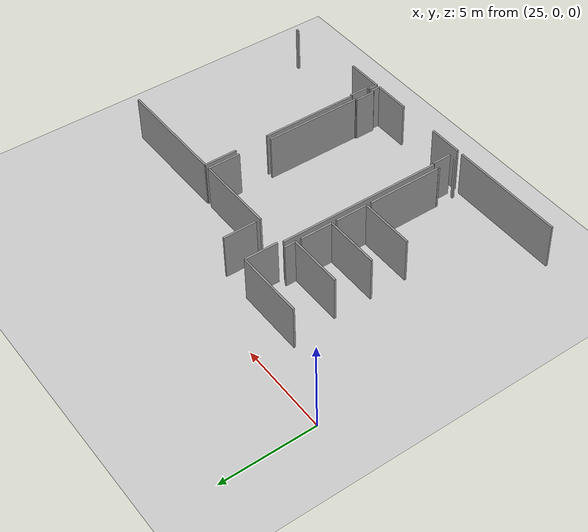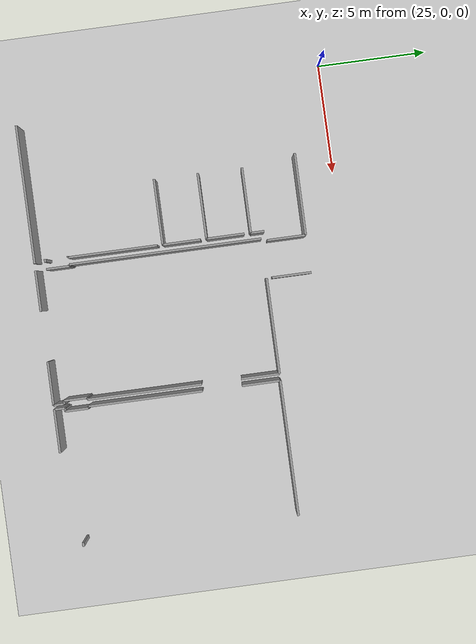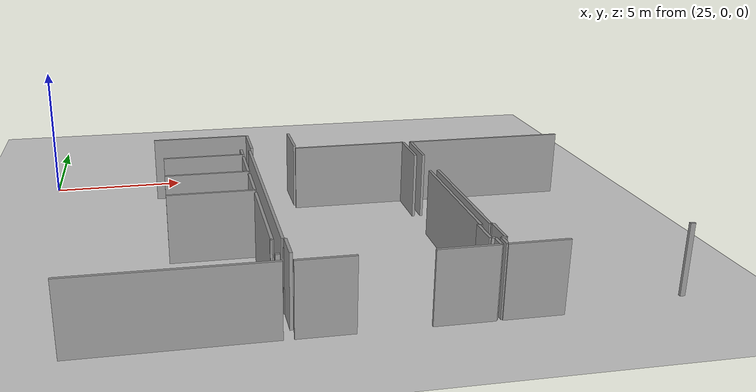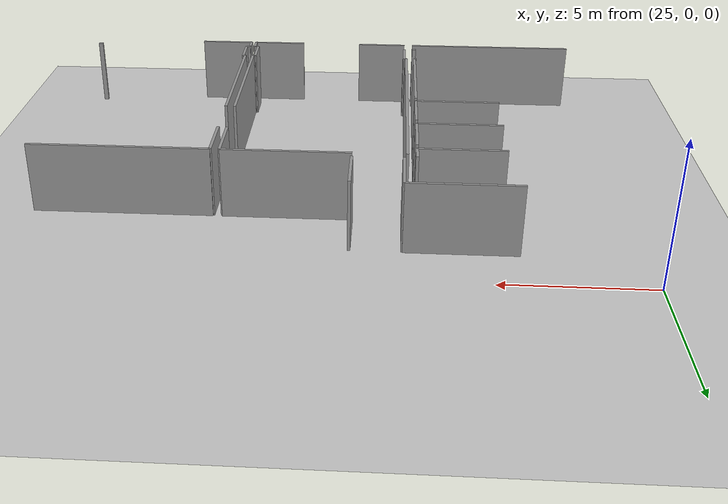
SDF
<sdf version="1.6">
 <world name="default">
  <model name="ground_plane">
   <static>1</static>
   <link name="link">
    <collision name="collision">
     <geometry><plane><normal>0 0 1</normal><size>100 100</size></plane></geometry>
     <surface><friction><ode><mu>100</mu><mu2>50</mu2></ode></friction></surface>
    </collision>
    <visual name="visual">
     <cast_shadows>0</cast_shadows>
     <geometry><plane><normal>0 0 1</normal><size>100 100</size></plane></geometry>
     <material>
      <script><uri>file://media/materials/scripts/gazebo.material</uri><name>Gazebo/Grey</name></script>
     </material>
    </visual>
   </link>
  </model>
  <model name="0510040942_A-40">
   <static>1</static>
   <link name="Wall_236">
    <collision name="Wall_236_Collision">
     <geometry><box><size>0.619790146796 0.1 2.5</size></box></geometry>
     <pose>0.309895073398 0 1.25 0 0 0</pose>
    </collision>
    <visual name="Wall_236_Visual">
     <pose>0.309895073398 0 1.25 0 0 0</pose>
     <geometry><box><size>0.619790146796 0.1 2.5</size></box></geometry>
     <material>
      <script><uri>file://media/materials/scripts/gazebo.material</uri><name>Gazebo/Grey</name></script>
      <ambient>1 1 1 1</ambient>
     </material>
    </visual>
    <pose>91.0551023256 -16.1712574698 0 0 0 -1.57079632679</pose>
   </link>
   <link name="Wall_237">
    <collision name="Wall_237_Collision">
     <geometry><box><size>2.9950391413 0.1 2.5</size></box></geometry>
     <pose>1.49751957065 0 1.25 0 0 0</pose>
    </collision>
    <visual name="Wall_237_Visual">
     <pose>1.49751957065 0 1.25 0 0 0</pose>
     <geometry><box><size>2.9950391413 0.1 2.5</size></box></geometry>
     <material>
      <script><uri>file://media/materials/scripts/gazebo.material</uri><name>Gazebo/Grey</name></script>
      <ambient>1 1 1 1</ambient>
     </material>
    </visual>
    <pose>91.0551023256 -16.7910476166 0 0 0 3.14159265359</pose>
   </link>
   <link name="Wall_241">
    <collision name="Wall_241_Collision">
     <geometry><box><size>1.73541241103 0.1 2.5</size></box></geometry>
     <pose>0.867706205514 0 1.25 0 0 0</pose>
    </collision>
    <visual name="Wall_241_Visual">
     <pose>0.867706205514 0 1.25 0 0 0</pose>
     <geometry><box><size>1.73541241103 0.1 2.5</size></box></geometry>
     <material>
      <script><uri>file://media/materials/scripts/gazebo.material</uri><name>Gazebo/Grey</name></script>
      <ambient>1 1 1 1</ambient>
     </material>
    </visual>
    <pose>91.0481241357 -17.0796909296 0 0 0 -1.57079632679</pose>
   </link>
   <link name="Wall_242">
    <collision name="Wall_242_Collision">
     <geometry><box><size>2.99960668384 0.1 2.5</size></box></geometry>
     <pose>1.49980334192 0 1.25 0 0 0</pose>
    </collision>
    <visual name="Wall_242_Visual">
     <pose>1.49980334192 0 1.25 0 0 0</pose>
     <geometry><box><size>2.99960668384 0.1 2.5</size></box></geometry>
     <material>
      <script><uri>file://media/materials/scripts/gazebo.material</uri><name>Gazebo/Grey</name></script>
      <ambient>1 1 1 1</ambient>
     </material>
    </visual>
    <pose>91.0481241357 -18.8151033406 0 0 0 3.14159265359</pose>
   </link>
   <link name="Wall_246">
    <collision name="Wall_246_Collision">
     <geometry><box><size>1.7266579545 0.1 2.5</size></box></geometry>
     <pose>0.863328977251 0 1.25 0 0 0</pose>
    </collision>
    <visual name="Wall_246_Visual">
     <pose>0.863328977251 0 1.25 0 0 0</pose>
     <geometry><box><size>1.7266579545 0.1 2.5</size></box></geometry>
     <material>
      <script><uri>file://media/materials/scripts/gazebo.material</uri><name>Gazebo/Grey</name></script>
      <ambient>1 1 1 1</ambient>
     </material>
    </visual>
    <pose>91.0495197737 -19.0894096451 0 0 0 -1.57079632679</pose>
   </link>
   <link name="Wall_247">
    <collision name="Wall_247_Collision">
     <geometry><box><size>3.00442797874 0.1 2.5</size></box></geometry>
     <pose>1.50221398937 0 1.25 0 0 0</pose>
    </collision>
    <visual name="Wall_247_Visual">
     <pose>1.50221398937 0 1.25 0 0 0</pose>
     <geometry><box><size>3.00442797874 0.1 2.5</size></box></geometry>
     <material>
      <script><uri>file://media/materials/scripts/gazebo.material</uri><name>Gazebo/Grey</name></script>
      <ambient>1 1 1 1</ambient>
     </material>
    </visual>
    <pose>91.0495197737 -20.8160675996 0 0 0 3.14159265359</pose>
   </link>
   <link name="Wall_254">
    <collision name="Wall_254_Collision">
     <geometry><box><size>4.0682847609 0.1 2.5</size></box></geometry>
     <pose>2.03414238045 0 1.25 0 0 0</pose>
    </collision>
    <visual name="Wall_254_Visual">
     <pose>2.03414238045 0 1.25 0 0 0</pose>
     <geometry><box><size>4.0682847609 0.1 2.5</size></box></geometry>
     <material>
      <script><uri>file://media/materials/scripts/gazebo.material</uri><name>Gazebo/Grey</name></script>
      <ambient>1 1 1 1</ambient>
     </material>
    </visual>
    <pose>91.0463478691 -21.0754025147 0 0 0 -1.57079632679</pose>
   </link>
   <link name="Wall_255">
    <collision name="Wall_255_Collision">
     <geometry><box><size>0.0615349480442 0.1 2.5</size></box></geometry>
     <pose>0.0307674740221 0 1.25 0 0 0</pose>
    </collision>
    <visual name="Wall_255_Visual">
     <pose>0.0307674740221 0 1.25 0 0 0</pose>
     <geometry><box><size>0.0615349480442 0.1 2.5</size></box></geometry>
     <material>
      <script><uri>file://media/materials/scripts/gazebo.material</uri><name>Gazebo/Grey</name></script>
      <ambient>1 1 1 1</ambient>
     </material>
    </visual>
    <pose>91.0463478691 -25.1436872756 0 0 0 3.14159265359</pose>
   </link>
   <link name="Wall_257">
    <collision name="Wall_257_Collision">
     <geometry><box><size>0.1422281995 0.1 2.5</size></box></geometry>
     <pose>0.0711140997501 0 1.25 0 0 0</pose>
    </collision>
    <visual name="Wall_257_Visual">
     <pose>0.0711140997501 0 1.25 0 0 0</pose>
     <geometry><box><size>0.1422281995 0.1 2.5</size></box></geometry>
     <material>
      <script><uri>file://media/materials/scripts/gazebo.material</uri><name>Gazebo/Grey</name></script>
      <ambient>1 1 1 1</ambient>
     </material>
    </visual>
    <pose>90.9848129211 -26.198662725 0 0 0 0.0</pose>
   </link>
   <link name="Wall_258">
    <collision name="Wall_258_Collision">
     <geometry><box><size>6.31729195478 0.1 2.5</size></box></geometry>
     <pose>3.15864597739 0 1.25 0 0 0</pose>
    </collision>
    <visual name="Wall_258_Visual">
     <pose>3.15864597739 0 1.25 0 0 0</pose>
     <geometry><box><size>6.31729195478 0.1 2.5</size></box></geometry>
     <material>
      <script><uri>file://media/materials/scripts/gazebo.material</uri><name>Gazebo/Grey</name></script>
      <ambient>1 1 1 1</ambient>
     </material>
    </visual>
    <pose>91.1270411206 -26.6847253765 0 0 0 3.14159265359</pose>
   </link>
   <link name="Wall_261">
    <collision name="Wall_261_Collision">
     <geometry><box><size>8.77792861946 0.1 2.5</size></box></geometry>
     <pose>4.38896430973 0 1.25 0 0 0</pose>
    </collision>
    <visual name="Wall_261_Visual">
     <pose>4.38896430973 0 1.25 0 0 0</pose>
     <geometry><box><size>8.77792861946 0.1 2.5</size></box></geometry>
     <material>
      <script><uri>file://media/materials/scripts/gazebo.material</uri><name>Gazebo/Grey</name></script>
      <ambient>1 1 1 1</ambient>
     </material>
    </visual>
    <pose>91.3696283797 -25.1247827245 0 0 0 1.57079632679</pose>
   </link>
   <link name="Wall_262">
    <collision name="Wall_262_Collision">
     <geometry><box><size>4.37519824403 0.1 2.5</size></box></geometry>
     <pose>2.18759912202 0 1.25 0 0 0</pose>
    </collision>
    <visual name="Wall_262_Visual">
     <pose>2.18759912202 0 1.25 0 0 0</pose>
     <geometry><box><size>4.37519824403 0.1 2.5</size></box></geometry>
     <material>
      <script><uri>file://media/materials/scripts/gazebo.material</uri><name>Gazebo/Grey</name></script>
      <ambient>1 1 1 1</ambient>
     </material>
    </visual>
    <pose>93.1762183285 -16.3468541051 0 0 0 0.0</pose>
   </link>
   <link name="Wall_263">
    <collision name="Wall_263_Collision">
     <geometry><box><size>1.75076442899 0.1 2.5</size></box></geometry>
     <pose>0.875382214497 0 1.25 0 0 0</pose>
    </collision>
    <visual name="Wall_263_Visual">
     <pose>0.875382214497 0 1.25 0 0 0</pose>
     <geometry><box><size>1.75076442899 0.1 2.5</size></box></geometry>
     <material>
      <script><uri>file://media/materials/scripts/gazebo.material</uri><name>Gazebo/Grey</name></script>
      <ambient>1 1 1 1</ambient>
     </material>
    </visual>
    <pose>97.5514165726 -16.3468541051 0 0 0 -1.57079632679</pose>
   </link>
   <link name="Wall_264">
    <collision name="Wall_264_Collision">
     <geometry><box><size>5.21042414707 0.1 2.5</size></box></geometry>
     <pose>2.60521207354 0 1.25 0 0 0</pose>
    </collision>
    <visual name="Wall_264_Visual">
     <pose>2.60521207354 0 1.25 0 0 0</pose>
     <geometry><box><size>5.21042414707 0.1 2.5</size></box></geometry>
     <material>
      <script><uri>file://media/materials/scripts/gazebo.material</uri><name>Gazebo/Grey</name></script>
      <ambient>1 1 1 1</ambient>
     </material>
    </visual>
    <pose>97.5514165726 -19.9143585775 0 0 0 -1.57079632679</pose>
   </link>
   <link name="Wall_265">
    <collision name="Wall_265_Collision">
     <geometry><box><size>0.088305822348 0.1 2.5</size></box></geometry>
     <pose>0.044152911174 0 1.25 0 0 0</pose>
    </collision>
    <visual name="Wall_265_Visual">
     <pose>0.044152911174 0 1.25 0 0 0</pose>
     <geometry><box><size>0.088305822348 0.1 2.5</size></box></geometry>
     <material>
      <script><uri>file://media/materials/scripts/gazebo.material</uri><name>Gazebo/Grey</name></script>
      <ambient>1 1 1 1</ambient>
     </material>
    </visual>
    <pose>97.5514165726 -25.1247827245 0 0 0 3.14159265359</pose>
   </link>
   <link name="Wall_266">
    <collision name="Wall_266_Collision">
     <geometry><box><size>1.07235748633 0.1 2.5</size></box></geometry>
     <pose>0.536178743165 0 1.25 0 0 0</pose>
    </collision>
    <visual name="Wall_266_Visual">
     <pose>0.536178743165 0 1.25 0 0 0</pose>
     <geometry><box><size>1.07235748633 0.1 2.5</size></box></geometry>
     <material>
      <script><uri>file://media/materials/scripts/gazebo.material</uri><name>Gazebo/Grey</name></script>
      <ambient>1 1 1 1</ambient>
     </material>
    </visual>
    <pose>97.4631107502 -25.1247827245 0 0 0 -1.57079632679</pose>
   </link>
   <link name="Wall_267">
    <collision name="Wall_267_Collision">
     <geometry><box><size>0.145146351675 0.1 2.5</size></box></geometry>
     <pose>0.0725731758377 0 1.25 0 0 0</pose>
    </collision>
    <visual name="Wall_267_Visual">
     <pose>0.0725731758377 0 1.25 0 0 0</pose>
     <geometry><box><size>0.145146351675 0.1 2.5</size></box></geometry>
     <material>
      <script><uri>file://media/materials/scripts/gazebo.material</uri><name>Gazebo/Grey</name></script>
      <ambient>1 1 1 1</ambient>
     </material>
    </visual>
    <pose>97.4631107502 -26.1971402109 0 0 0 0.0</pose>
   </link>
   <link name="Wall_268">
    <collision name="Wall_268_Collision">
     <geometry><box><size>0.498369641067 0.1 2.5</size></box></geometry>
     <pose>0.249184820534 0 1.25 0 0 0</pose>
    </collision>
    <visual name="Wall_268_Visual">
     <pose>0.249184820534 0 1.25 0 0 0</pose>
     <geometry><box><size>0.498369641067 0.1 2.5</size></box></geometry>
     <material>
      <script><uri>file://media/materials/scripts/gazebo.material</uri><name>Gazebo/Grey</name></script>
      <ambient>1 1 1 1</ambient>
     </material>
    </visual>
    <pose>97.6082571019 -26.1971402109 0 0 0 -1.57079632679</pose>
   </link>
   <link name="Wall_269">
    <collision name="Wall_269_Collision">
     <geometry><box><size>1.99335168809 0.1 2.5</size></box></geometry>
     <pose>0.996675844044 0 1.25 0 0 0</pose>
    </collision>
    <visual name="Wall_269_Visual">
     <pose>0.996675844044 0 1.25 0 0 0</pose>
     <geometry><box><size>1.99335168809 0.1 2.5</size></box></geometry>
     <material>
      <script><uri>file://media/materials/scripts/gazebo.material</uri><name>Gazebo/Grey</name></script>
      <ambient>1 1 1 1</ambient>
     </material>
    </visual>
    <pose>97.6082571019 -26.6955098519 0 0 0 3.14159265359</pose>
   </link>
   <link name="Wall_270">
    <collision name="Wall_270_Collision">
     <geometry><box><size>1.86000482129 0.1 2.5</size></box></geometry>
     <pose>0.930002410647 0 1.25 0 0 0</pose>
    </collision>
    <visual name="Wall_270_Visual">
     <pose>0.930002410647 0 1.25 0 0 0</pose>
     <geometry><box><size>1.86000482129 0.1 2.5</size></box></geometry>
     <material>
      <script><uri>file://media/materials/scripts/gazebo.material</uri><name>Gazebo/Grey</name></script>
      <ambient>1 1 1 1</ambient>
     </material>
    </visual>
    <pose>93.3061395384 -26.6955098519 0 0 0 3.14159265359</pose>
   </link>
   <link name="Wall_271">
    <collision name="Wall_271_Collision">
     <geometry><box><size>1.06372990598 0.1 2.5</size></box></geometry>
     <pose>0.531864952992 0 1.25 0 0 0</pose>
    </collision>
    <visual name="Wall_271_Visual">
     <pose>0.531864952992 0 1.25 0 0 0</pose>
     <geometry><box><size>1.06372990598 0.1 2.5</size></box></geometry>
     <material>
      <script><uri>file://media/materials/scripts/gazebo.material</uri><name>Gazebo/Grey</name></script>
      <ambient>1 1 1 1</ambient>
     </material>
    </visual>
    <pose>91.4461347171 -26.1929532969 0 0 0 1.57079632679</pose>
   </link>
   <link name="Wall_272">
    <collision name="Wall_272_Collision">
     <geometry><box><size>0.0766351041626 0.1 2.5</size></box></geometry>
     <pose>0.0383175520813 0 1.25 0 0 0</pose>
    </collision>
    <visual name="Wall_272_Visual">
     <pose>0.0383175520813 0 1.25 0 0 0</pose>
     <geometry><box><size>0.0766351041626 0.1 2.5</size></box></geometry>
     <material>
      <script><uri>file://media/materials/scripts/gazebo.material</uri><name>Gazebo/Grey</name></script>
      <ambient>1 1 1 1</ambient>
     </material>
    </visual>
    <pose>91.4461347171 -25.1292233909 0 0 0 3.08361458689</pose>
   </link>
   <link name="Wall_273">
    <collision name="Wall_273_Collision">
     <geometry><box><size>5.21638732761 0.1 2.5</size></box></geometry>
     <pose>2.6081936638 0 1.25 0 0 0</pose>
    </collision>
    <visual name="Wall_273_Visual">
     <pose>2.6081936638 0 1.25 0 0 0</pose>
     <geometry><box><size>5.21638732761 0.1 2.5</size></box></geometry>
     <material>
      <script><uri>file://media/materials/scripts/gazebo.material</uri><name>Gazebo/Grey</name></script>
      <ambient>1 1 1 1</ambient>
     </material>
    </visual>
    <pose>97.8621363411 -25.12858901 0 0 0 1.57079632679</pose>
   </link>
   <link name="Wall_274">
    <collision name="Wall_274_Collision">
     <geometry><box><size>1.75799637134 0.1 2.5</size></box></geometry>
     <pose>0.878998185671 0 1.25 0 0 0</pose>
    </collision>
    <visual name="Wall_274_Visual">
     <pose>0.878998185671 0 1.25 0 0 0</pose>
     <geometry><box><size>1.75799637134 0.1 2.5</size></box></geometry>
     <material>
      <script><uri>file://media/materials/scripts/gazebo.material</uri><name>Gazebo/Grey</name></script>
      <ambient>1 1 1 1</ambient>
     </material>
    </visual>
    <pose>97.8621363411 -18.1103061522 0 0 0 1.57079632679</pose>
   </link>
   <link name="Wall_275">
    <collision name="Wall_275_Collision">
     <geometry><box><size>6.18851263052 0.1 2.5</size></box></geometry>
     <pose>3.09425631526 0 1.25 0 0 0</pose>
    </collision>
    <visual name="Wall_275_Visual">
     <pose>3.09425631526 0 1.25 0 0 0</pose>
     <geometry><box><size>6.18851263052 0.1 2.5</size></box></geometry>
     <material>
      <script><uri>file://media/materials/scripts/gazebo.material</uri><name>Gazebo/Grey</name></script>
      <ambient>1 1 1 1</ambient>
     </material>
    </visual>
    <pose>97.8621363411 -16.3523097809 0 0 0 0.0</pose>
   </link>
   <link name="Wall_280">
    <collision name="Wall_280_Collision">
     <geometry><box><size>0.17115596889 0.1 2.5</size></box></geometry>
     <pose>0.085577984445 0 1.25 0 0 0</pose>
    </collision>
    <visual name="Wall_280_Visual">
     <pose>0.085577984445 0 1.25 0 0 0</pose>
     <geometry><box><size>0.17115596889 0.1 2.5</size></box></geometry>
     <material>
      <script><uri>file://media/materials/scripts/gazebo.material</uri><name>Gazebo/Grey</name></script>
      <ambient>1 1 1 1</ambient>
     </material>
    </visual>
    <pose>103.955111207 -26.1926995445 0 0 0 0.0</pose>
   </link>
   <link name="Wall_283">
    <collision name="Wall_283_Collision">
     <geometry><box><size>1.98967227882 0.1 2.5</size></box></geometry>
     <pose>0.994836139412 0 1.25 0 0 0</pose>
    </collision>
    <visual name="Wall_283_Visual">
     <pose>0.994836139412 0 1.25 0 0 0</pose>
     <geometry><box><size>1.98967227882 0.1 2.5</size></box></geometry>
     <material>
      <script><uri>file://media/materials/scripts/gazebo.material</uri><name>Gazebo/Grey</name></script>
      <ambient>1 1 1 1</ambient>
     </material>
    </visual>
    <pose>99.791034929 -26.6863747669 0 0 0 3.14159265359</pose>
   </link>
   <link name="Wall_284">
    <collision name="Wall_284_Collision">
     <geometry><box><size>0.487077660911 0.1 2.5</size></box></geometry>
     <pose>0.243538830455 0 1.25 0 0 0</pose>
    </collision>
    <visual name="Wall_284_Visual">
     <pose>0.243538830455 0 1.25 0 0 0</pose>
     <geometry><box><size>0.487077660911 0.1 2.5</size></box></geometry>
     <material>
      <script><uri>file://media/materials/scripts/gazebo.material</uri><name>Gazebo/Grey</name></script>
      <ambient>1 1 1 1</ambient>
     </material>
    </visual>
    <pose>97.8013626502 -26.6863747669 0 0 0 1.57079632679</pose>
   </link>
   <link name="Wall_285">
    <collision name="Wall_285_Collision">
     <geometry><box><size>0.141213190048 0.1 2.5</size></box></geometry>
     <pose>0.0706065950239 0 1.25 0 0 0</pose>
    </collision>
    <visual name="Wall_285_Visual">
     <pose>0.0706065950239 0 1.25 0 0 0</pose>
     <geometry><box><size>0.141213190048 0.1 2.5</size></box></geometry>
     <material>
      <script><uri>file://media/materials/scripts/gazebo.material</uri><name>Gazebo/Grey</name></script>
      <ambient>1 1 1 1</ambient>
     </material>
    </visual>
    <pose>97.8013626502 -26.199297106 0 0 0 0.0</pose>
   </link>
   <link name="Wall_286">
    <collision name="Wall_286_Collision">
     <geometry><box><size>1.06829744852 0.1 2.5</size></box></geometry>
     <pose>0.53414872426 0 1.25 0 0 0</pose>
    </collision>
    <visual name="Wall_286_Visual">
     <pose>0.53414872426 0 1.25 0 0 0</pose>
     <geometry><box><size>1.06829744852 0.1 2.5</size></box></geometry>
     <material>
      <script><uri>file://media/materials/scripts/gazebo.material</uri><name>Gazebo/Grey</name></script>
      <ambient>1 1 1 1</ambient>
     </material>
    </visual>
    <pose>97.9425758402 -26.199297106 0 0 0 1.57079632679</pose>
   </link>
   <link name="Wall_287">
    <collision name="Wall_287_Collision">
     <geometry><box><size>0.0804756126751 0.1 2.5</size></box></geometry>
     <pose>0.0402378063375 0 1.25 0 0 0</pose>
    </collision>
    <visual name="Wall_287_Visual">
     <pose>0.0402378063375 0 1.25 0 0 0</pose>
     <geometry><box><size>0.0804756126751 0.1 2.5</size></box></geometry>
     <material>
      <script><uri>file://media/materials/scripts/gazebo.material</uri><name>Gazebo/Grey</name></script>
      <ambient>1 1 1 1</ambient>
     </material>
    </visual>
    <pose>97.9425758402 -25.1309996574 0 0 0 3.11163316614</pose>
   </link>
   <link name="Wall_461">
    <collision name="Wall_461_Collision">
     <geometry><box><size>1.7809609602 0.1 2.5</size></box></geometry>
     <pose>0.890480480099 0 1.25 0 0 0</pose>
    </collision>
    <visual name="Wall_461_Visual">
     <pose>0.890480480099 0 1.25 0 0 0</pose>
     <geometry><box><size>1.7809609602 0.1 2.5</size></box></geometry>
     <material>
      <script><uri>file://media/materials/scripts/gazebo.material</uri><name>Gazebo/Grey</name></script>
      <ambient>1 1 1 1</ambient>
     </material>
    </visual>
    <pose>93.1861146707 -14.3065582298 0 0 0 -1.57079632679</pose>
   </link>
   <link name="Wall_462">
    <collision name="Wall_462_Collision">
     <geometry><box><size>1.75660073334 0.1 2.5</size></box></geometry>
     <pose>0.878300366672 0 1.25 0 0 0</pose>
    </collision>
    <visual name="Wall_462_Visual">
     <pose>0.878300366672 0 1.25 0 0 0</pose>
     <geometry><box><size>1.75660073334 0.1 2.5</size></box></geometry>
     <material>
      <script><uri>file://media/materials/scripts/gazebo.material</uri><name>Gazebo/Grey</name></script>
      <ambient>1 1 1 1</ambient>
     </material>
    </visual>
    <pose>91.4805181623 -16.08751919 0 0 0 1.57079632679</pose>
   </link>
   <link name="Wall_463">
    <collision name="Wall_463_Collision">
     <geometry><box><size>3.74842990725 0.1 2.5</size></box></geometry>
     <pose>1.87421495363 0 1.25 0 0 0</pose>
    </collision>
    <visual name="Wall_463_Visual">
     <pose>1.87421495363 0 1.25 0 0 0</pose>
     <geometry><box><size>3.74842990725 0.1 2.5</size></box></geometry>
     <material>
      <script><uri>file://media/materials/scripts/gazebo.material</uri><name>Gazebo/Grey</name></script>
      <ambient>1 1 1 1</ambient>
     </material>
    </visual>
    <pose>91.4805181623 -14.3309184567 0 0 0 3.14159265359</pose>
   </link>
   <pose>-58.65 12.576975145 0 0 0 0</pose>
  </model>
 </world>
</sdf>
